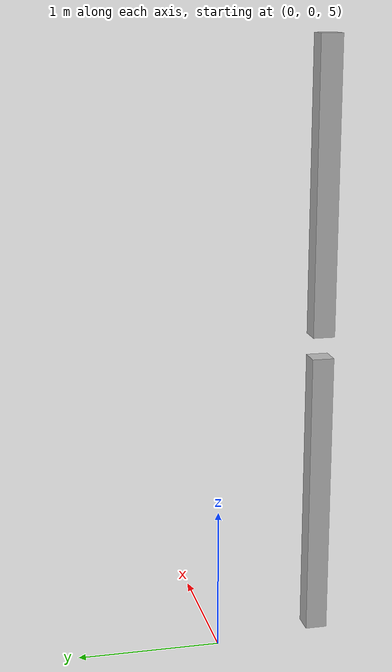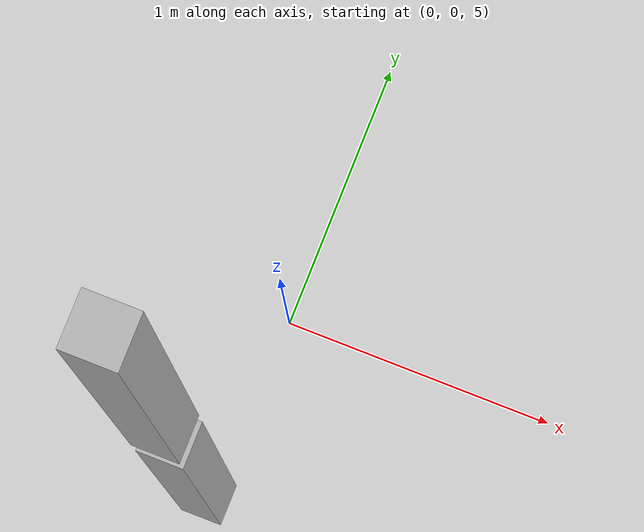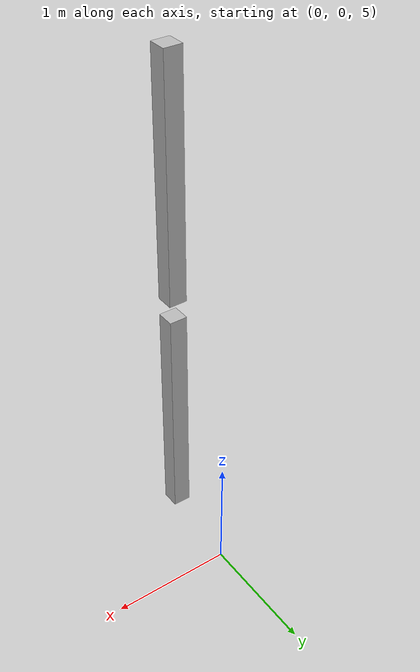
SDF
<sdf version="1.7">
 <world name="default">
  <model name="orthogonal_747_2.000.15_TS">
   <static>1</static>
   <link name="z_link_4_2_3">
    <inertial>
     <mass>1</mass>
     <inertia>
      <ixx>0.166667</ixx>
      <ixy>0</ixy>
      <ixz>0</ixz>
      <iyy>0.166667</iyy>
      <iyz>0</iyz>
      <izz>0.166667</izz>
     </inertia>
    </inertial>
    <pose>6.45 4.3 8.6 0 -0 0</pose>
    <visual name="visual_0">
     <laser_retro>3935</laser_retro>
     <geometry><box><size>0.15 1e-06 2</size></box></geometry>
     <material>
      <script><name>Gazebo/Grey</name><uri>file://media/materials/scripts/gazebo.material</uri></script>
      <shader type="pixel"><normal_map>__default__</normal_map></shader>
      <ambient>0.678 0.498 0.659 1</ambient>
      <diffuse>0.7 0.7 0.7 1</diffuse>
      <specular>0.01 0.01 0.01 1</specular>
      <emissive>0 0 0 1</emissive>
     </material>
     <pose>0 -0.075 0 0 -0 0</pose>
     <transparency>1</transparency>
    </visual>
    <visual name="visual_1">
     <laser_retro>3936</laser_retro>
     <geometry><box><size>0.15 1e-06 2</size></box></geometry>
     <material>
      <script><name>Gazebo/Grey</name><uri>file://media/materials/scripts/gazebo.material</uri></script>
      <shader type="pixel"><normal_map>__default__</normal_map></shader>
      <ambient>0.447 0.624 0.812 1</ambient>
      <diffuse>0.7 0.7 0.7 1</diffuse>
      <specular>0.01 0.01 0.01 1</specular>
      <emissive>0 0 0 1</emissive>
     </material>
     <pose>0 0.075 0 0 -0 0</pose>
     <transparency>1</transparency>
    </visual>
    <visual name="visual_2">
     <laser_retro>3937</laser_retro>
     <geometry><box><size>0.15 0.15 1e-06</size></box></geometry>
     <material>
      <script><name>Gazebo/Grey</name><uri>file://media/materials/scripts/gazebo.material</uri></script>
      <shader type="pixel"><normal_map>__default__</normal_map></shader>
      <ambient>0.988 0.686 0.243 1</ambient>
      <diffuse>0.7 0.7 0.7 1</diffuse>
      <specular>0.01 0.01 0.01 1</specular>
      <emissive>0 0 0 1</emissive>
     </material>
     <pose>0 0 -1 0 -0 0</pose>
     <transparency>1</transparency>
    </visual>
    <visual name="visual_3">
     <laser_retro>3938</laser_retro>
     <geometry><box><size>1e-06 0.15 2</size></box></geometry>
     <material>
      <script><name>Gazebo/Grey</name><uri>file://media/materials/scripts/gazebo.material</uri></script>
      <shader type="pixel"><normal_map>__default__</normal_map></shader>
      <ambient>0.988 0.914 0.31 1</ambient>
      <diffuse>0.7 0.7 0.7 1</diffuse>
      <specular>0.01 0.01 0.01 1</specular>
      <emissive>0 0 0 1</emissive>
     </material>
     <pose>0.075 0 0 0 -0 0</pose>
     <transparency>1</transparency>
    </visual>
    <visual name="visual_4">
     <laser_retro>3939</laser_retro>
     <geometry><box><size>0.15 0.15 1e-06</size></box></geometry>
     <material>
      <script><name>Gazebo/Grey</name><uri>file://media/materials/scripts/gazebo.material</uri></script>
      <shader type="pixel"><normal_map>__default__</normal_map></shader>
      <ambient>0.937 0.161 0.161 1</ambient>
      <diffuse>0.7 0.7 0.7 1</diffuse>
      <specular>0.01 0.01 0.01 1</specular>
      <emissive>0 0 0 1</emissive>
     </material>
     <pose>0 0 1 0 -0 0</pose>
     <transparency>1</transparency>
    </visual>
    <visual name="visual_5">
     <laser_retro>3940</laser_retro>
     <geometry><box><size>1e-06 0.15 2</size></box></geometry>
     <material>
      <script><name>Gazebo/Grey</name><uri>file://media/materials/scripts/gazebo.material</uri></script>
      <shader type="pixel"><normal_map>__default__</normal_map></shader>
      <ambient>0.541 0.886 0.204 1</ambient>
      <diffuse>0.7 0.7 0.7 1</diffuse>
      <specular>0.01 0.01 0.01 1</specular>
      <emissive>0 0 0 1</emissive>
     </material>
     <pose>-0.075 0 0 0 -0 0</pose>
     <transparency>1</transparency>
    </visual>
    <visual name="visual_texture">
     <geometry><box><size>0.149985 0.149985 1.9998</size></box></geometry>
     <material>
      <script>
       <uri>model://BASE_MODELS/simple_block_v2_textured/materials/scripts</uri>
       <uri>model://BASE_MODELS/simple_block_v2_textured/materials/textures</uri>
       <name>metal</name>
      </script>
     </material>
     <laser_retro>3941</laser_retro>
    </visual>
    <collision name="collision">
     <geometry><box><size>0.15 0.15 2</size></box></geometry>
     <surface>
      <friction>
       <ode><mu>1</mu><mu2>1</mu2><fdir1>0 0 0</fdir1><slip1>0</slip1><slip2>0</slip2></ode>
       <torsional>
        <coefficient>1</coefficient>
        <patch_radius>0</patch_radius>
        <surface_radius>0</surface_radius>
        <use_patch_radius>1</use_patch_radius>
        <ode><slip>0</slip></ode>
       </torsional>
      </friction>
      <bounce><restitution_coefficient>0</restitution_coefficient><threshold>1e+06</threshold></bounce>
      <contact>
       <collide_without_contact>0</collide_without_contact>
       <collide_without_contact_bitmask>1</collide_without_contact_bitmask>
       <collide_bitmask>1</collide_bitmask>
       <ode>
        <soft_cfm>0</soft_cfm>
        <soft_erp>0.2</soft_erp>
        <kp>1e+13</kp>
        <kd>1</kd>
        <max_vel>0.01</max_vel>
        <min_depth>0</min_depth>
       </ode>
       <bullet>
        <split_impulse>1</split_impulse>
        <split_impulse_penetration_threshold>-0.01</split_impulse_penetration_threshold>
        <soft_cfm>0</soft_cfm>
        <soft_erp>0.2</soft_erp>
        <kp>1e+13</kp>
        <kd>1</kd>
       </bullet>
      </contact>
     </surface>
    </collision>
   </link>
   <link name="z_link_5_2_3">
    <inertial>
     <mass>1</mass>
     <inertia>
      <ixx>0.166667</ixx>
      <ixy>0</ixy>
      <ixz>0</ixz>
      <iyy>0.166667</iyy>
      <iyz>0</iyz>
      <izz>0.166667</izz>
     </inertia>
    </inertial>
    <pose>6.45 4.3 10.75 0 -0 0</pose>
    <visual name="visual_0">
     <laser_retro>4838</laser_retro>
     <geometry><box><size>0.15 1e-06 2</size></box></geometry>
     <material>
      <script><name>Gazebo/Grey</name><uri>file://media/materials/scripts/gazebo.material</uri></script>
      <shader type="pixel"><normal_map>__default__</normal_map></shader>
      <ambient>0.678 0.498 0.659 1</ambient>
      <diffuse>0.7 0.7 0.7 1</diffuse>
      <specular>0.01 0.01 0.01 1</specular>
      <emissive>0 0 0 1</emissive>
     </material>
     <pose>0 -0.075 0 0 -0 0</pose>
     <transparency>1</transparency>
    </visual>
    <visual name="visual_1">
     <laser_retro>4839</laser_retro>
     <geometry><box><size>0.15 1e-06 2</size></box></geometry>
     <material>
      <script><name>Gazebo/Grey</name><uri>file://media/materials/scripts/gazebo.material</uri></script>
      <shader type="pixel"><normal_map>__default__</normal_map></shader>
      <ambient>0.447 0.624 0.812 1</ambient>
      <diffuse>0.7 0.7 0.7 1</diffuse>
      <specular>0.01 0.01 0.01 1</specular>
      <emissive>0 0 0 1</emissive>
     </material>
     <pose>0 0.075 0 0 -0 0</pose>
     <transparency>1</transparency>
    </visual>
    <visual name="visual_2">
     <laser_retro>4840</laser_retro>
     <geometry><box><size>0.15 0.15 1e-06</size></box></geometry>
     <material>
      <script><name>Gazebo/Grey</name><uri>file://media/materials/scripts/gazebo.material</uri></script>
      <shader type="pixel"><normal_map>__default__</normal_map></shader>
      <ambient>0.988 0.686 0.243 1</ambient>
      <diffuse>0.7 0.7 0.7 1</diffuse>
      <specular>0.01 0.01 0.01 1</specular>
      <emissive>0 0 0 1</emissive>
     </material>
     <pose>0 0 -1 0 -0 0</pose>
     <transparency>1</transparency>
    </visual>
    <visual name="visual_3">
     <laser_retro>4841</laser_retro>
     <geometry><box><size>1e-06 0.15 2</size></box></geometry>
     <material>
      <script><name>Gazebo/Grey</name><uri>file://media/materials/scripts/gazebo.material</uri></script>
      <shader type="pixel"><normal_map>__default__</normal_map></shader>
      <ambient>0.988 0.914 0.31 1</ambient>
      <diffuse>0.7 0.7 0.7 1</diffuse>
      <specular>0.01 0.01 0.01 1</specular>
      <emissive>0 0 0 1</emissive>
     </material>
     <pose>0.075 0 0 0 -0 0</pose>
     <transparency>1</transparency>
    </visual>
    <visual name="visual_4">
     <laser_retro>4842</laser_retro>
     <geometry><box><size>0.15 0.15 1e-06</size></box></geometry>
     <material>
      <script><name>Gazebo/Grey</name><uri>file://media/materials/scripts/gazebo.material</uri></script>
      <shader type="pixel"><normal_map>__default__</normal_map></shader>
      <ambient>0.937 0.161 0.161 1</ambient>
      <diffuse>0.7 0.7 0.7 1</diffuse>
      <specular>0.01 0.01 0.01 1</specular>
      <emissive>0 0 0 1</emissive>
     </material>
     <pose>0 0 1 0 -0 0</pose>
     <transparency>1</transparency>
    </visual>
    <visual name="visual_5">
     <laser_retro>4843</laser_retro>
     <geometry><box><size>1e-06 0.15 2</size></box></geometry>
     <material>
      <script><name>Gazebo/Grey</name><uri>file://media/materials/scripts/gazebo.material</uri></script>
      <shader type="pixel"><normal_map>__default__</normal_map></shader>
      <ambient>0.541 0.886 0.204 1</ambient>
      <diffuse>0.7 0.7 0.7 1</diffuse>
      <specular>0.01 0.01 0.01 1</specular>
      <emissive>0 0 0 1</emissive>
     </material>
     <pose>-0.075 0 0 0 -0 0</pose>
     <transparency>1</transparency>
    </visual>
    <visual name="visual_texture">
     <geometry><box><size>0.149985 0.149985 1.9998</size></box></geometry>
     <material>
      <script>
       <uri>model://BASE_MODELS/simple_block_v2_textured/materials/scripts</uri>
       <uri>model://BASE_MODELS/simple_block_v2_textured/materials/textures</uri>
       <name>metal</name>
      </script>
     </material>
     <laser_retro>4844</laser_retro>
    </visual>
    <collision name="collision">
     <geometry><box><size>0.15 0.15 2</size></box></geometry>
     <surface>
      <friction>
       <ode><mu>1</mu><mu2>1</mu2><fdir1>0 0 0</fdir1><slip1>0</slip1><slip2>0</slip2></ode>
       <torsional>
        <coefficient>1</coefficient>
        <patch_radius>0</patch_radius>
        <surface_radius>0</surface_radius>
        <use_patch_radius>1</use_patch_radius>
        <ode><slip>0</slip></ode>
       </torsional>
      </friction>
      <bounce><restitution_coefficient>0</restitution_coefficient><threshold>1e+06</threshold></bounce>
      <contact>
       <collide_without_contact>0</collide_without_contact>
       <collide_without_contact_bitmask>1</collide_without_contact_bitmask>
       <collide_bitmask>1</collide_bitmask>
       <ode>
        <soft_cfm>0</soft_cfm>
        <soft_erp>0.2</soft_erp>
        <kp>1e+13</kp>
        <kd>1</kd>
        <max_vel>0.01</max_vel>
        <min_depth>0</min_depth>
       </ode>
       <bullet>
        <split_impulse>1</split_impulse>
        <split_impulse_penetration_threshold>-0.01</split_impulse_penetration_threshold>
        <soft_cfm>0</soft_cfm>
        <soft_erp>0.2</soft_erp>
        <kp>1e+13</kp>
        <kd>1</kd>
       </bullet>
      </contact>
     </surface>
    </collision>
   </link>
   <pose>-6.47624 -5 -2.5 0 -0 0</pose>
  </model>
 </world>
</sdf>
